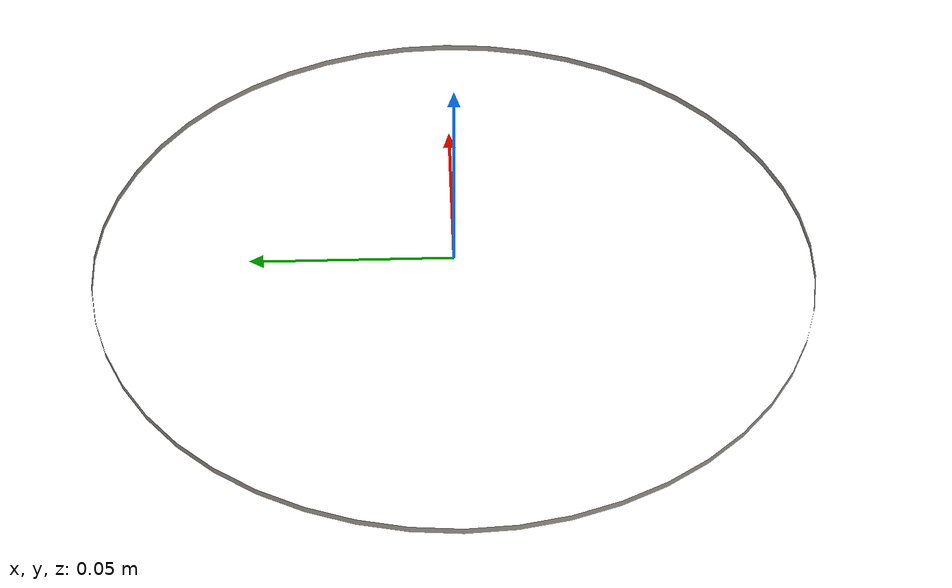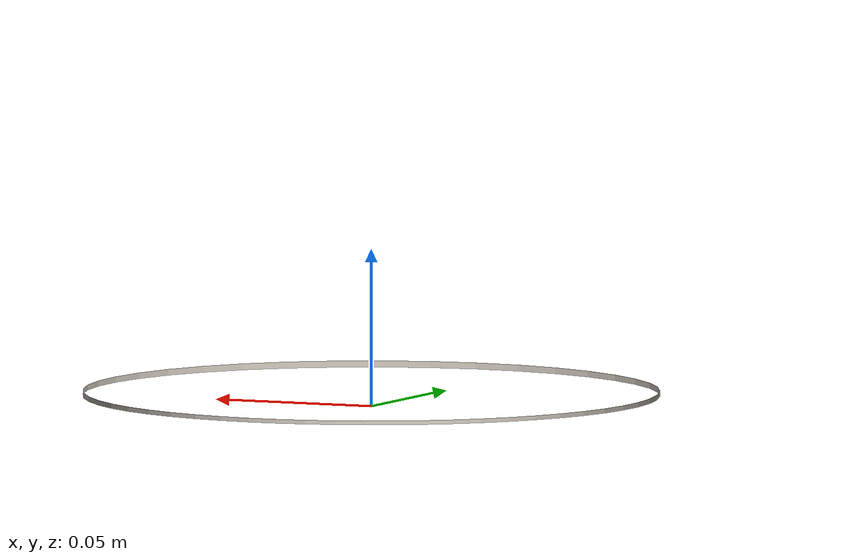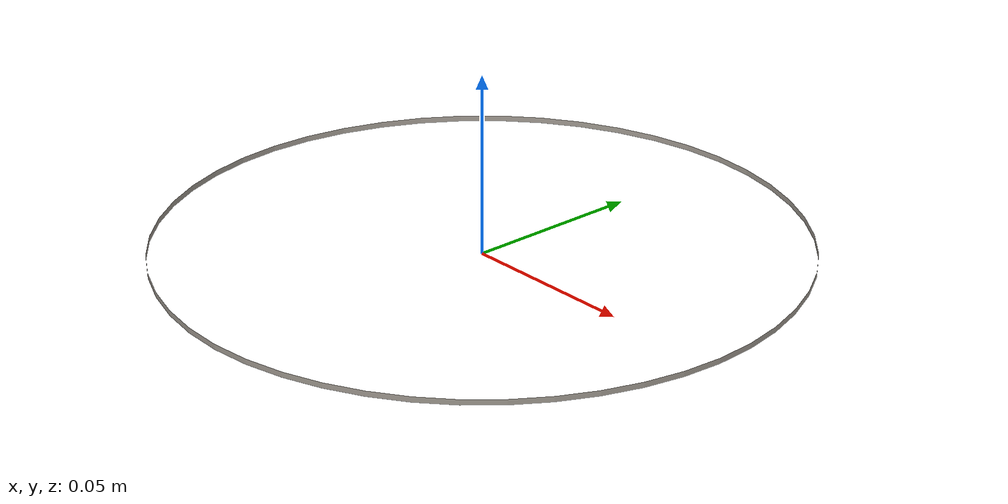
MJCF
<mujoco model="plate_31">
  <asset>
    <mesh file="visual/model_normalized_0.obj" name="model_normalized_0_vis" scale="0.175 0.175 0.175" refquat="1.0 0.0 0.0 0.0"/>
    <mesh file="collision/model_normalized_collision_22.obj" name="model_normalized_collision_22._coll" scale="0.175 0.175 0.175" refquat="1.0 0.0 0.0 0.0"/>
    <mesh file="collision/model_normalized_collision_23.obj" name="model_normalized_collision_23._coll" scale="0.175 0.175 0.175" refquat="1.0 0.0 0.0 0.0"/>
    <mesh file="collision/model_normalized_collision_21.obj" name="model_normalized_collision_21._coll" scale="0.175 0.175 0.175" refquat="1.0 0.0 0.0 0.0"/>
    <mesh file="collision/model_normalized_collision_20.obj" name="model_normalized_collision_20._coll" scale="0.175 0.175 0.175" refquat="1.0 0.0 0.0 0.0"/>
    <mesh file="collision/model_normalized_collision_24.obj" name="model_normalized_collision_24._coll" scale="0.175 0.175 0.175" refquat="1.0 0.0 0.0 0.0"/>
    <mesh file="collision/model_normalized_collision_30.obj" name="model_normalized_collision_30._coll" scale="0.175 0.175 0.175" refquat="1.0 0.0 0.0 0.0"/>
    <mesh file="collision/model_normalized_collision_18.obj" name="model_normalized_collision_18._coll" scale="0.175 0.175 0.175" refquat="1.0 0.0 0.0 0.0"/>
    <mesh file="collision/model_normalized_collision_19.obj" name="model_normalized_collision_19._coll" scale="0.175 0.175 0.175" refquat="1.0 0.0 0.0 0.0"/>
    <mesh file="collision/model_normalized_collision_31.obj" name="model_normalized_collision_31._coll" scale="0.175 0.175 0.175" refquat="1.0 0.0 0.0 0.0"/>
    <mesh file="collision/model_normalized_collision_25.obj" name="model_normalized_collision_25._coll" scale="0.175 0.175 0.175" refquat="1.0 0.0 0.0 0.0"/>
    <mesh file="collision/model_normalized_collision_27.obj" name="model_normalized_collision_27._coll" scale="0.175 0.175 0.175" refquat="1.0 0.0 0.0 0.0"/>
    <mesh file="collision/model_normalized_collision_26.obj" name="model_normalized_collision_26._coll" scale="0.175 0.175 0.175" refquat="1.0 0.0 0.0 0.0"/>
    <mesh file="collision/model_normalized_collision_9.obj" name="model_normalized_collision_9._coll" scale="0.175 0.175 0.175" refquat="1.0 0.0 0.0 0.0"/>
    <mesh file="collision/model_normalized_collision_8.obj" name="model_normalized_collision_8._coll" scale="0.175 0.175 0.175" refquat="1.0 0.0 0.0 0.0"/>
    <mesh file="collision/model_normalized_collision_6.obj" name="model_normalized_collision_6._coll" scale="0.175 0.175 0.175" refquat="1.0 0.0 0.0 0.0"/>
    <mesh file="collision/model_normalized_collision_7.obj" name="model_normalized_collision_7._coll" scale="0.175 0.175 0.175" refquat="1.0 0.0 0.0 0.0"/>
    <mesh file="collision/model_normalized_collision_5.obj" name="model_normalized_collision_5._coll" scale="0.175 0.175 0.175" refquat="1.0 0.0 0.0 0.0"/>
    <mesh file="collision/model_normalized_collision_4.obj" name="model_normalized_collision_4._coll" scale="0.175 0.175 0.175" refquat="1.0 0.0 0.0 0.0"/>
    <mesh file="collision/model_normalized_collision_0.obj" name="model_normalized_collision_0._coll" scale="0.175 0.175 0.175" refquat="1.0 0.0 0.0 0.0"/>
    <mesh file="collision/model_normalized_collision_1.obj" name="model_normalized_collision_1._coll" scale="0.175 0.175 0.175" refquat="1.0 0.0 0.0 0.0"/>
    <mesh file="collision/model_normalized_collision_3.obj" name="model_normalized_collision_3._coll" scale="0.175 0.175 0.175" refquat="1.0 0.0 0.0 0.0"/>
    <mesh file="collision/model_normalized_collision_2.obj" name="model_normalized_collision_2._coll" scale="0.175 0.175 0.175" refquat="1.0 0.0 0.0 0.0"/>
    <mesh file="collision/model_normalized_collision_17.obj" name="model_normalized_collision_17._coll" scale="0.175 0.175 0.175" refquat="1.0 0.0 0.0 0.0"/>
    <mesh file="collision/model_normalized_collision_16.obj" name="model_normalized_collision_16._coll" scale="0.175 0.175 0.175" refquat="1.0 0.0 0.0 0.0"/>
    <mesh file="collision/model_normalized_collision_28.obj" name="model_normalized_collision_28._coll" scale="0.175 0.175 0.175" refquat="1.0 0.0 0.0 0.0"/>
    <mesh file="collision/model_normalized_collision_14.obj" name="model_normalized_collision_14._coll" scale="0.175 0.175 0.175" refquat="1.0 0.0 0.0 0.0"/>
    <mesh file="collision/model_normalized_collision_15.obj" name="model_normalized_collision_15._coll" scale="0.175 0.175 0.175" refquat="1.0 0.0 0.0 0.0"/>
    <mesh file="collision/model_normalized_collision_29.obj" name="model_normalized_collision_29._coll" scale="0.175 0.175 0.175" refquat="1.0 0.0 0.0 0.0"/>
    <mesh file="collision/model_normalized_collision_11.obj" name="model_normalized_collision_11._coll" scale="0.175 0.175 0.175" refquat="1.0 0.0 0.0 0.0"/>
    <mesh file="collision/model_normalized_collision_10.obj" name="model_normalized_collision_10._coll" scale="0.175 0.175 0.175" refquat="1.0 0.0 0.0 0.0"/>
    <mesh file="collision/model_normalized_collision_12.obj" name="model_normalized_collision_12._coll" scale="0.175 0.175 0.175" refquat="1.0 0.0 0.0 0.0"/>
    <mesh file="collision/model_normalized_collision_13.obj" name="model_normalized_collision_13._coll" scale="0.175 0.175 0.175" refquat="1.0 0.0 0.0 0.0"/>
    <texture type="2d" name="image0" file="visual/image0.png"/>
    <material name="phong2.002" texture="image0" specular="0.5" shininess="1.0"/>
  </asset>
  <worldbody>
    <body>
      <body name="object">
        <geom solimp="0.998 0.998 0.001" solref="0.001 1" density="100" friction="0.95 0.3 0.1" type="mesh" mesh="model_normalized_0_vis" conaffinity="0" contype="0" group="1" material="phong2.002"/>
        <geom solimp="0.998 0.998 0.001" solref="0.001 1" density="100" friction="0.95 0.3 0.1" type="mesh" mesh="model_normalized_collision_22._coll" group="0" rgba="0.8 0.8 0.8 0.0"/>
        <geom solimp="0.998 0.998 0.001" solref="0.001 1" density="100" friction="0.95 0.3 0.1" type="mesh" mesh="model_normalized_collision_23._coll" group="0" rgba="0.8 0.8 0.8 0.0"/>
        <geom solimp="0.998 0.998 0.001" solref="0.001 1" density="100" friction="0.95 0.3 0.1" type="mesh" mesh="model_normalized_collision_21._coll" group="0" rgba="0.8 0.8 0.8 0.0"/>
        <geom solimp="0.998 0.998 0.001" solref="0.001 1" density="100" friction="0.95 0.3 0.1" type="mesh" mesh="model_normalized_collision_20._coll" group="0" rgba="0.8 0.8 0.8 0.0"/>
        <geom solimp="0.998 0.998 0.001" solref="0.001 1" density="100" friction="0.95 0.3 0.1" type="mesh" mesh="model_normalized_collision_24._coll" group="0" rgba="0.8 0.8 0.8 0.0"/>
        <geom solimp="0.998 0.998 0.001" solref="0.001 1" density="100" friction="0.95 0.3 0.1" type="mesh" mesh="model_normalized_collision_30._coll" group="0" rgba="0.8 0.8 0.8 0.0"/>
        <geom solimp="0.998 0.998 0.001" solref="0.001 1" density="100" friction="0.95 0.3 0.1" type="mesh" mesh="model_normalized_collision_18._coll" group="0" rgba="0.8 0.8 0.8 0.0"/>
        <geom solimp="0.998 0.998 0.001" solref="0.001 1" density="100" friction="0.95 0.3 0.1" type="mesh" mesh="model_normalized_collision_19._coll" group="0" rgba="0.8 0.8 0.8 0.0"/>
        <geom solimp="0.998 0.998 0.001" solref="0.001 1" density="100" friction="0.95 0.3 0.1" type="mesh" mesh="model_normalized_collision_31._coll" group="0" rgba="0.8 0.8 0.8 0.0"/>
        <geom solimp="0.998 0.998 0.001" solref="0.001 1" density="100" friction="0.95 0.3 0.1" type="mesh" mesh="model_normalized_collision_25._coll" group="0" rgba="0.8 0.8 0.8 0.0"/>
        <geom solimp="0.998 0.998 0.001" solref="0.001 1" density="100" friction="0.95 0.3 0.1" type="mesh" mesh="model_normalized_collision_27._coll" group="0" rgba="0.8 0.8 0.8 0.0"/>
        <geom solimp="0.998 0.998 0.001" solref="0.001 1" density="100" friction="0.95 0.3 0.1" type="mesh" mesh="model_normalized_collision_26._coll" group="0" rgba="0.8 0.8 0.8 0.0"/>
        <geom solimp="0.998 0.998 0.001" solref="0.001 1" density="100" friction="0.95 0.3 0.1" type="mesh" mesh="model_normalized_collision_9._coll" group="0" rgba="0.8 0.8 0.8 0.0"/>
        <geom solimp="0.998 0.998 0.001" solref="0.001 1" density="100" friction="0.95 0.3 0.1" type="mesh" mesh="model_normalized_collision_8._coll" group="0" rgba="0.8 0.8 0.8 0.0"/>
        <geom solimp="0.998 0.998 0.001" solref="0.001 1" density="100" friction="0.95 0.3 0.1" type="mesh" mesh="model_normalized_collision_6._coll" group="0" rgba="0.8 0.8 0.8 0.0"/>
        <geom solimp="0.998 0.998 0.001" solref="0.001 1" density="100" friction="0.95 0.3 0.1" type="mesh" mesh="model_normalized_collision_7._coll" group="0" rgba="0.8 0.8 0.8 0.0"/>
        <geom solimp="0.998 0.998 0.001" solref="0.001 1" density="100" friction="0.95 0.3 0.1" type="mesh" mesh="model_normalized_collision_5._coll" group="0" rgba="0.8 0.8 0.8 0.0"/>
        <geom solimp="0.998 0.998 0.001" solref="0.001 1" density="100" friction="0.95 0.3 0.1" type="mesh" mesh="model_normalized_collision_4._coll" group="0" rgba="0.8 0.8 0.8 0.0"/>
        <geom solimp="0.998 0.998 0.001" solref="0.001 1" density="100" friction="0.95 0.3 0.1" type="mesh" mesh="model_normalized_collision_0._coll" group="0" rgba="0.8 0.8 0.8 0.0"/>
        <geom solimp="0.998 0.998 0.001" solref="0.001 1" density="100" friction="0.95 0.3 0.1" type="mesh" mesh="model_normalized_collision_1._coll" group="0" rgba="0.8 0.8 0.8 0.0"/>
        <geom solimp="0.998 0.998 0.001" solref="0.001 1" density="100" friction="0.95 0.3 0.1" type="mesh" mesh="model_normalized_collision_3._coll" group="0" rgba="0.8 0.8 0.8 0.0"/>
        <geom solimp="0.998 0.998 0.001" solref="0.001 1" density="100" friction="0.95 0.3 0.1" type="mesh" mesh="model_normalized_collision_2._coll" group="0" rgba="0.8 0.8 0.8 0.0"/>
        <geom solimp="0.998 0.998 0.001" solref="0.001 1" density="100" friction="0.95 0.3 0.1" type="mesh" mesh="model_normalized_collision_17._coll" group="0" rgba="0.8 0.8 0.8 0.0"/>
        <geom solimp="0.998 0.998 0.001" solref="0.001 1" density="100" friction="0.95 0.3 0.1" type="mesh" mesh="model_normalized_collision_16._coll" group="0" rgba="0.8 0.8 0.8 0.0"/>
        <geom solimp="0.998 0.998 0.001" solref="0.001 1" density="100" friction="0.95 0.3 0.1" type="mesh" mesh="model_normalized_collision_28._coll" group="0" rgba="0.8 0.8 0.8 0.0"/>
        <geom solimp="0.998 0.998 0.001" solref="0.001 1" density="100" friction="0.95 0.3 0.1" type="mesh" mesh="model_normalized_collision_14._coll" group="0" rgba="0.8 0.8 0.8 0.0"/>
        <geom solimp="0.998 0.998 0.001" solref="0.001 1" density="100" friction="0.95 0.3 0.1" type="mesh" mesh="model_normalized_collision_15._coll" group="0" rgba="0.8 0.8 0.8 0.0"/>
        <geom solimp="0.998 0.998 0.001" solref="0.001 1" density="100" friction="0.95 0.3 0.1" type="mesh" mesh="model_normalized_collision_29._coll" group="0" rgba="0.8 0.8 0.8 0.0"/>
        <geom solimp="0.998 0.998 0.001" solref="0.001 1" density="100" friction="0.95 0.3 0.1" type="mesh" mesh="model_normalized_collision_11._coll" group="0" rgba="0.8 0.8 0.8 0.0"/>
        <geom solimp="0.998 0.998 0.001" solref="0.001 1" density="100" friction="0.95 0.3 0.1" type="mesh" mesh="model_normalized_collision_10._coll" group="0" rgba="0.8 0.8 0.8 0.0"/>
        <geom solimp="0.998 0.998 0.001" solref="0.001 1" density="100" friction="0.95 0.3 0.1" type="mesh" mesh="model_normalized_collision_12._coll" group="0" rgba="0.8 0.8 0.8 0.0"/>
        <geom solimp="0.998 0.998 0.001" solref="0.001 1" density="100" friction="0.95 0.3 0.1" type="mesh" mesh="model_normalized_collision_13._coll" group="0" rgba="0.8 0.8 0.8 0.0"/>
      </body>
      <site rgba="0 0 0 0" size="0.005" pos="2.624999998618316e-09 -1.749999999078877e-09 -0.006935738249999999" name="bottom_site"/>
      <site rgba="0 0 0 0" size="0.005" pos="2.624999998618316e-09 -1.749999999078877e-09 0.00692693925" name="top_site"/>
      <site rgba="0 0 0 0" size="0.005" pos="0.08564819725 0.08564822525 -4.39949999999998e-06" name="horizontal_radius_site"/>
    </body>
  </worldbody>
</mujoco>
